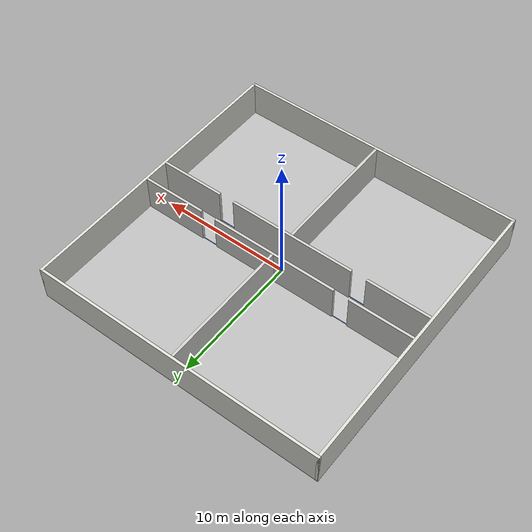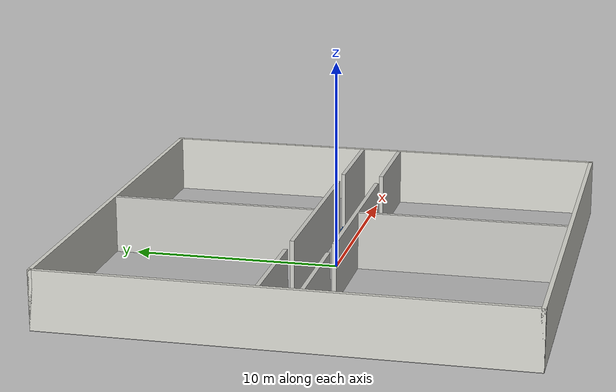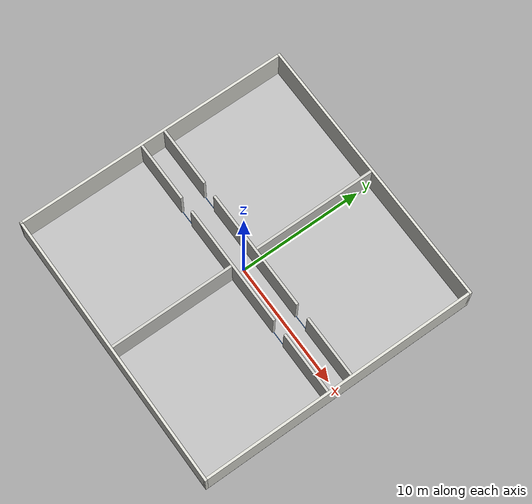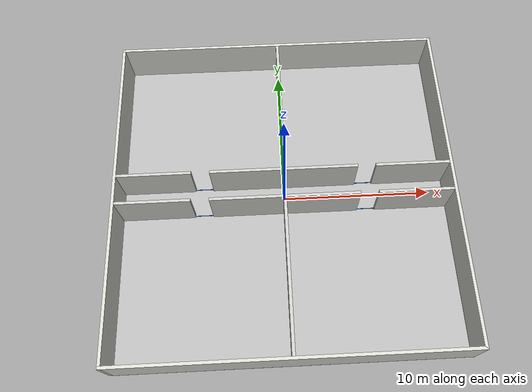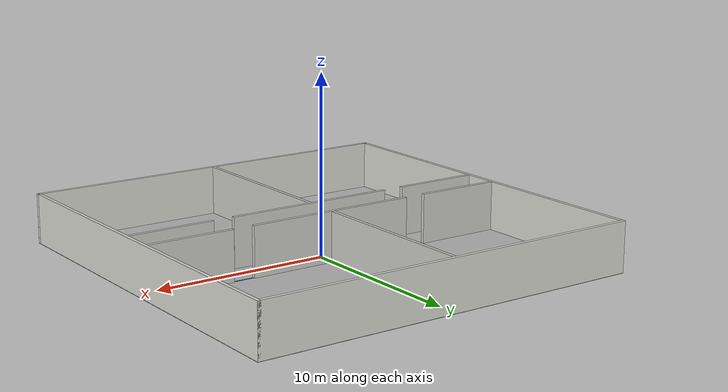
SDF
<?xml version="1.0" ?>
<sdf version="1.6">

  <world name="pea">

    <physics type="ode">

      <real_time_update_rate>1000</real_time_update_rate>

      <max_step_size>0.001</max_step_size>

      <real_time_factor>1.0</real_time_factor>

      <ode>

        <solver>

          <type>quick</type>

          <iters>150</iters>

          <sor>1.400000</sor>

        </solver>

        <constraints>

          <cfm>0.00001</cfm>

          <erp>0.2</erp>

          <contact_max_correcting_vel>2000.0</contact_max_correcting_vel>

          <contact_surface_layer>0.01</contact_surface_layer>

        </constraints>

      </ode>

    </physics>

    <scene>

      <ambient>0.55 0.55 0.55 1</ambient>

      <background>0.78 0.82 0.86 1</background>

      <shadows>true</shadows>

    </scene>

    <include>

      <uri>model://sun</uri>

    </include>

    <!-- Piso -->

    <model name="floor">

      <static>true</static>

      <link name="floor_link">

        <collision name="floor_collision">

          <geometry>

            <box>

              <size>22.4 22.4 0.02</size>

            </box>

          </geometry>

        </collision>

        <visual name="floor_visual">

          <geometry>

            <box>

              <size>22.4 22.4 0.02</size>

            </box>

          </geometry>

          <material>

            <ambient>0.72 0.72 0.72 1</ambient>

            <diffuse>0.72 0.72 0.72 1</diffuse>

          </material>

        </visual>

      </link>

      <pose>0 0 -0.01 0 0 0</pose>

    </model>

    <!-- ===== Paredes externas: ambiente quadrado fechado ===== -->

    <model name="wall_outer_north">

      <static>true</static>

      <pose>0 11.1 1.4 0 0 0</pose>

      <link name="link">

        <collision name="collision">
          <geometry>
            <box>
              <size>22.4 0.2 2.8</size>
            </box>
          </geometry>
        </collision>

        <visual name="visual">
          <geometry>
            <box>
              <size>22.4 0.2 2.8</size>
            </box>
          </geometry>
          <material>
            <ambient>0.85 0.85 0.82 1</ambient>
            <diffuse>0.85 0.85 0.82 1</diffuse>
          </material>
        </visual>

      </link>

    </model>

    <model name="wall_outer_south">

      <static>true</static>

      <pose>0 -11.1 1.4 0 0 0</pose>

      <link name="link">

        <collision name="collision">
          <geometry>
            <box>
              <size>22.4 0.2 2.8</size>
            </box>
          </geometry>
        </collision>

        <visual name="visual">
          <geometry>
            <box>
              <size>22.4 0.2 2.8</size>
            </box>
          </geometry>
          <material>
            <ambient>0.85 0.85 0.82 1</ambient>
            <diffuse>0.85 0.85 0.82 1</diffuse>
          </material>
        </visual>

      </link>

    </model>

    <model name="wall_outer_east">

      <static>true</static>

      <pose>11.1 0 1.4 0 0 0</pose>

      <link name="link">

        <collision name="collision">
          <geometry>
            <box>
              <size>0.2 22.4 2.8</size>
            </box>
          </geometry>
        </collision>

        <visual name="visual">
          <geometry>
            <box>
              <size>0.2 22.4 2.8</size>
            </box>
          </geometry>
          <material>
            <ambient>0.85 0.85 0.82 1</ambient>
            <diffuse>0.85 0.85 0.82 1</diffuse>
          </material>
        </visual>

      </link>

    </model>

    <model name="wall_outer_west">

      <static>true</static>

      <pose>-11.1 0 1.4 0 0 0</pose>

      <link name="link">

        <collision name="collision">
          <geometry>
            <box>
              <size>0.2 22.4 2.8</size>
            </box>
          </geometry>
        </collision>

        <visual name="visual">
          <geometry>
            <box>
              <size>0.2 22.4 2.8</size>
            </box>
          </geometry>
          <material>
            <ambient>0.85 0.85 0.82 1</ambient>
            <diffuse>0.85 0.85 0.82 1</diffuse>
          </material>
        </visual>

      </link>

    </model>

    <!-- ===== Paredes do corredor central com aberturas para portas ===== -->

    <!-- Corredor: comprimento 22 m, largura 1.75 m -->

    <!-- Parede superior do corredor: segmentos com portas em x=-5.5 e x=+5.5 -->

    <model name="corridor_top_left_segment">

      <static>true</static>

      <pose>-8.55 0.975 1.4 0 0 0</pose>

      <link name="link">

        <collision name="collision">
          <geometry>
            <box>
              <size>4.9 0.2 2.8</size>
            </box>
          </geometry>
        </collision>

        <visual name="visual">
          <geometry>
            <box>
              <size>4.9 0.2 2.8</size>
            </box>
          </geometry>
          <material>
            <ambient>0.80 0.80 0.78 1</ambient>
            <diffuse>0.80 0.80 0.78 1</diffuse>
          </material>
        </visual>

      </link>

    </model>

    <model name="corridor_top_center_segment">

      <static>true</static>

      <pose>0 0.975 1.4 0 0 0</pose>

      <link name="link">

        <collision name="collision">
          <geometry>
            <box>
              <size>9.8 0.2 2.8</size>
            </box>
          </geometry>
        </collision>

        <visual name="visual">
          <geometry>
            <box>
              <size>9.8 0.2 2.8</size>
            </box>
          </geometry>
          <material>
            <ambient>0.80 0.80 0.78 1</ambient>
            <diffuse>0.80 0.80 0.78 1</diffuse>
          </material>
        </visual>

      </link>

    </model>

    <model name="corridor_top_right_segment">

      <static>true</static>

      <pose>8.55 0.975 1.4 0 0 0</pose>

      <link name="link">

        <collision name="collision">
          <geometry>
            <box>
              <size>4.9 0.2 2.8</size>
            </box>
          </geometry>
        </collision>

        <visual name="visual">
          <geometry>
            <box>
              <size>4.9 0.2 2.8</size>
            </box>
          </geometry>
          <material>
            <ambient>0.80 0.80 0.78 1</ambient>
            <diffuse>0.80 0.80 0.78 1</diffuse>
          </material>
        </visual>

      </link>

    </model>

    <!-- Parede inferior do corredor: segmentos com portas em x=-5.5 e x=+5.5 -->

    <model name="corridor_bottom_left_segment">

      <static>true</static>

      <pose>-8.55 -0.975 1.4 0 0 0</pose>

      <link name="link">

        <collision name="collision">
          <geometry>
            <box>
              <size>4.9 0.2 2.8</size>
            </box>
          </geometry>
        </collision>

        <visual name="visual">
          <geometry>
            <box>
              <size>4.9 0.2 2.8</size>
            </box>
          </geometry>
          <material>
            <ambient>0.80 0.80 0.78 1</ambient>
            <diffuse>0.80 0.80 0.78 1</diffuse>
          </material>
        </visual>

      </link>

    </model>

    <model name="corridor_bottom_center_segment">

      <static>true</static>

      <pose>0 -0.975 1.4 0 0 0</pose>

      <link name="link">

        <collision name="collision">
          <geometry>
            <box>
              <size>9.8 0.2 2.8</size>
            </box>
          </geometry>
        </collision>

        <visual name="visual">
          <geometry>
            <box>
              <size>9.8 0.2 2.8</size>
            </box>
          </geometry>
          <material>
            <ambient>0.80 0.80 0.78 1</ambient>
            <diffuse>0.80 0.80 0.78 1</diffuse>
          </material>
        </visual>

      </link>

    </model>

    <model name="corridor_bottom_right_segment">

      <static>true</static>

      <pose>8.55 -0.975 1.4 0 0 0</pose>

      <link name="link">

        <collision name="collision">
          <geometry>
            <box>
              <size>4.9 0.2 2.8</size>
            </box>
          </geometry>
        </collision>

        <visual name="visual">
          <geometry>
            <box>
              <size>4.9 0.2 2.8</size>
            </box>
          </geometry>
          <material>
            <ambient>0.80 0.80 0.78 1</ambient>
            <diffuse>0.80 0.80 0.78 1</diffuse>
          </material>
        </visual>

      </link>

    </model>

    <!-- ===== Paredes internas que separam as 4 salas ===== -->

    <!-- Divisão entre as duas salas superiores -->

    <model name="wall_room_divider_north">

      <static>true</static>

      <pose>0 6.0375 1.4 0 0 0</pose>

      <link name="link">

        <collision name="collision">
          <geometry>
            <box>
              <size>0.2 9.925 2.8</size>
            </box>
          </geometry>
        </collision>

        <visual name="visual">
          <geometry>
            <box>
              <size>0.2 9.925 2.8</size>
            </box>
          </geometry>
          <material>
            <ambient>0.80 0.80 0.78 1</ambient>
            <diffuse>0.80 0.80 0.78 1</diffuse>
          </material>
        </visual>

      </link>

    </model>

    <!-- Divisão entre as duas salas inferiores -->

    <model name="wall_room_divider_south">

      <static>true</static>

      <pose>0 -6.0375 1.4 0 0 0</pose>

      <link name="link">

        <collision name="collision">
          <geometry>
            <box>
              <size>0.2 9.925 2.8</size>
            </box>
          </geometry>
        </collision>

        <visual name="visual">
          <geometry>
            <box>
              <size>0.2 9.925 2.8</size>
            </box>
          </geometry>
          <material>
            <ambient>0.80 0.80 0.78 1</ambient>
            <diffuse>0.80 0.80 0.78 1</diffuse>
          </material>
        </visual>

      </link>

    </model>

    <!-- Marcadores visuais discretos das portas, sem colisão -->

    <model name="door_marker_room_1">

      <static>true</static>

      <pose>-5.5 0.98 0.01 0 0 0</pose>

      <link name="link">

        <visual name="visual">

          <geometry>
            <box>
              <size>1.2 0.04 0.02</size>
            </box>
          </geometry>

          <material>
            <ambient>0.15 0.45 0.85 1</ambient>
            <diffuse>0.15 0.45 0.85 1</diffuse>
          </material>

        </visual>

      </link>

    </model>

    <model name="door_marker_room_2">

      <static>true</static>

      <pose>5.5 0.98 0.01 0 0 0</pose>

      <link name="link">

        <visual name="visual">

          <geometry>
            <box>
              <size>1.2 0.04 0.02</size>
            </box>
          </geometry>

          <material>
            <ambient>0.15 0.45 0.85 1</ambient>
            <diffuse>0.15 0.45 0.85 1</diffuse>
          </material>

        </visual>

      </link>

    </model>

    <model name="door_marker_room_3">

      <static>true</static>

      <pose>-5.5 -0.98 0.01 0 0 0</pose>

      <link name="link">

        <visual name="visual">

          <geometry>
            <box>
              <size>1.2 0.04 0.02</size>
            </box>
          </geometry>

          <material>
            <ambient>0.15 0.45 0.85 1</ambient>
            <diffuse>0.15 0.45 0.85 1</diffuse>
          </material>

        </visual>

      </link>

    </model>

    <model name="door_marker_room_4">

      <static>true</static>

      <pose>5.5 -0.98 0.01 0 0 0</pose>

      <link name="link">

        <visual name="visual">

          <geometry>
            <box>
              <size>1.2 0.04 0.02</size>
            </box>
          </geometry>

          <material>
            <ambient>0.15 0.45 0.85 1</ambient>
            <diffuse>0.15 0.45 0.85 1</diffuse>
          </material>

        </visual>

      </link>

    </model>

  </world>

</sdf>
